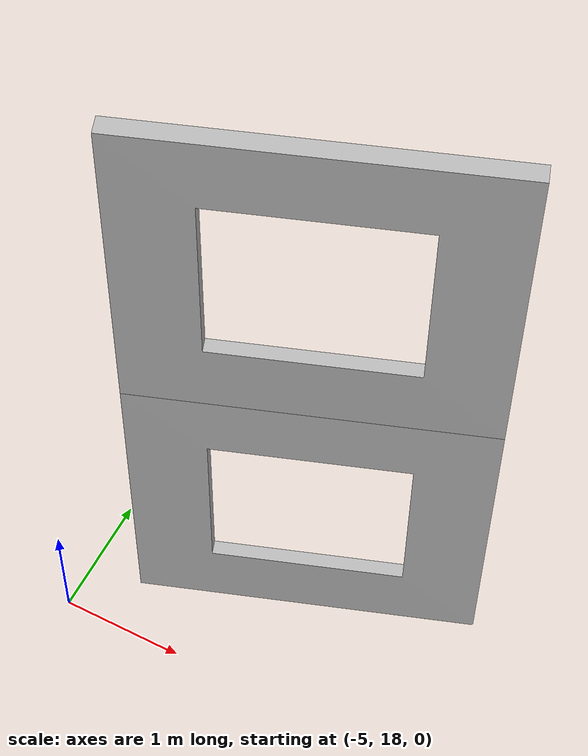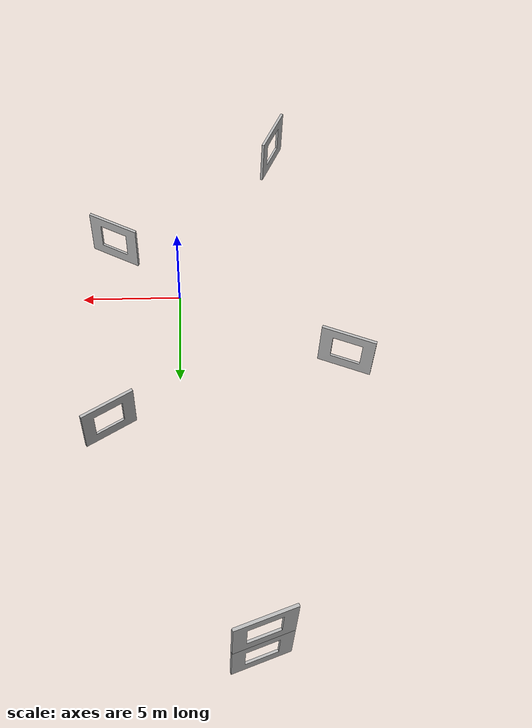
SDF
<sdf version="1.5">
 <world name="default">
  <plugin name="mrs_gazebo_static_transform_republisher_plugin" filename="libMrsGazeboCommonResources_StaticTransformRepublisher.so"/>
  <spherical_coordinates>
   <surface_model>EARTH_WGS84</surface_model>
   <latitude_deg>47.397743</latitude_deg>
   <longitude_deg>8.545594</longitude_deg>
   <elevation>0.0</elevation>
   <heading_deg>0</heading_deg>
  </spherical_coordinates>
  <physics name="default_physics" default="0" type="ode">
   <gravity>0 0 -9.8066</gravity>
   <ode>
    <solver>
     <type>quick</type>
     <iters>10</iters>
     <sor>1.3</sor>
     <use_dynamic_moi_rescaling>0</use_dynamic_moi_rescaling>
    </solver>
    <constraints>
     <cfm>0</cfm>
     <erp>0.2</erp>
     <contact_max_correcting_vel>250</contact_max_correcting_vel>
     <contact_surface_layer>0.004</contact_surface_layer>
    </constraints>
   </ode>
   <max_step_size>0.004</max_step_size>
   <real_time_factor>1</real_time_factor>
   <real_time_update_rate>250</real_time_update_rate>
   <magnetic_field>6.0e-06 2.3e-05 -4.2e-05</magnetic_field>
  </physics>
  <scene><shadows>false</shadows></scene>
  <light name="sun" type="directional">
   <pose>0 0 1000 0.4 0.2 0</pose>
   <diffuse>1 1 1 1</diffuse>
   <specular>0.6 0.6 0.6 1</specular>
   <direction>0.1 0.1 -0.9</direction>
   <attenuation>
    <range>20</range>
    <constant>0.5</constant>
    <linear>0.01</linear>
    <quadratic>0.001</quadratic>
   </attenuation>
  </light>
  <model name="the_void">
   <static>1</static>
   <link name="link">
    <pose>0 0 0.1 0 -0 0</pose>
    <visual name="the_void">
     <pose>0 0 2 0 -0 0</pose>
     <geometry><sphere><radius>0.25</radius></sphere></geometry>
     <material>
      <script><uri>file://media/materials/scripts/Gazebo.material</uri><name>Gazebo/Black</name></script>
     </material>
    </visual>
   </link>
   <pose>-1000 -1000 0 0 0 0</pose>
  </model>
  <plugin name="mrs_gazebo_rviz_cam_synchronizer" filename="libMrsGazeboCommonResources_RvizCameraSynchronizer.so">
   <target_frame_id>gazebo_user_camera</target_frame_id>
   <world_origin_frame_id>uav1/gps_origin</world_origin_frame_id>
   <frame_to_follow>uav1</frame_to_follow>
  </plugin>
  <include><uri>model://gate</uri><pose>3.37 -2.835 1.45 0 0 -0.49</pose><name>gate1</name></include>
  <include><uri>model://gate</uri><pose>-5.23 -9.435 1.45 0 0 1.120</pose><name>gate2</name></include>
  <include><uri>model://gate</uri><pose>-8.12 4.42 1.45 0 0 -0.39</pose><name>gate3top</name></include>
  <include><uri>model://gate</uri><pose>-3.295 18.905 4.15 0 0 -2.80</pose><name>gate3bottom</name></include>
  <include><uri>model://gate</uri><pose>-3.295 18.905 1.45 0 0 -2.80</pose><name>gate5</name></include>
  <include><uri>model://gate</uri><pose>3.28 7.935 1.45 0 0 -2.60</pose><name>gate6</name></include>
 </world>
</sdf>

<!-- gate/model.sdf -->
<sdf version="1.6">
  <model name="gate">
    <static>true</static>
    <link name="link">
      <visual name="visual">
        <geometry>
          <mesh>
            <scale>1 1 1</scale>
            <uri>model://gate/meshes/gate.dae</uri>
          </mesh>
        </geometry>
      </visual>
    </link>
  </model>
</sdf>
